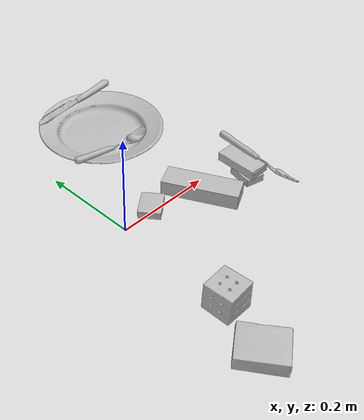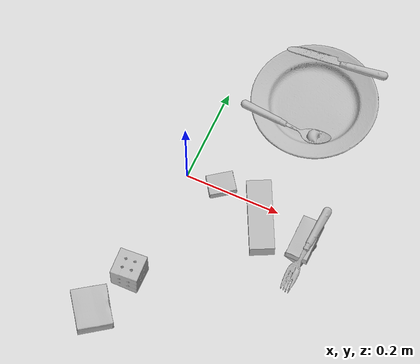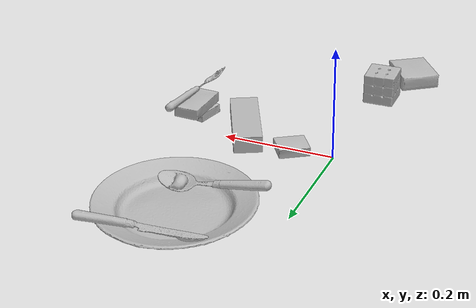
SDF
<sdf version="1.4">
  <world name="default">
    <light name="light1" type="point">
      <pose>0 0 1 0 0 0</pose>
      <diffuse>3 3 3 1</diffuse>
      <specular>3 3 3 1</specular>
    </light>
    <light name="light2" type="point">
      <pose>0 0.5 2 0 0 0</pose>
      <diffuse>1 1 1 1</diffuse>
      <specular>1 1 1 1</specular>
    </light>
    <light name="light3" type="point">
      <pose>0 0.5 2 0 0 0</pose>
      <diffuse>3 3 3 1</diffuse>
      <specular>3 3 3 1</specular>
    </light>
    <scene>
      <ambient>0.7 0.7 0.7</ambient>
    </scene>
    <model name="box11">
      <link name="link_box11">
        <collision name="default">
          <geometry>
            <mesh>
              <uri>model://pudding_box/collision_meshes/collision.obj</uri>
              <scale>0.5 0.5 0.5</scale>
            </mesh>
          </geometry>
          <surface>
            <friction>
              <ode>
                <mu>0.5</mu>
                <mu2>0.5</mu2>
              </ode>
            </friction>
          <contact>
        <ode>
            <max_vel>0</max_vel>
            <min_depth>0.0001</min_depth>
            <kp>1e8</kp>
        </ode>
    </contact></surface>
        </collision>
        <visual name="default">
          <geometry>
            <mesh>
              <uri>model://pudding_box/visual_meshes/visual.dae</uri>
              <scale>0.5 0.5 0.5</scale>
            </mesh>
          </geometry>
        </visual>
        <inertial>
          <mass>0.03786866366863251</mass>
          <pose>0.00024474109522998333 0.00040339428232982755 -0.0002594413817860186 0.005213102272185547 -0.006603797326323335 0.020079825161634604</pose>
          <inertia>
            <ixx>1.0702144e-05</ixx>
            <iyy>7.2004777e-06</iyy>
            <izz>1.580451e-05</izz>
            <ixy>0</ixy>
            <ixz>0</ixz>
            <iyz>0</iyz>
          </inertia>
        </inertial>
      </link>
      <pose>0.07222223281860352 0.006603177171200514 0.009862902574241161 0.022348445214074343 -0.011391777864585865 -0.9452913525447683</pose>
    </model>
    <model name="box12">
      <link name="link_box12">
        <collision name="default">
          <geometry>
            <mesh>
              <uri>model://gelatin_box/collision_meshes/collision.obj</uri>
              <scale>1.0 1.0 1.0</scale>
            </mesh>
          </geometry>
          <surface>
            <friction>
              <ode>
                <mu>0.5</mu>
                <mu2>0.5</mu2>
              </ode>
            </friction>
          <contact>
        <ode>
            <max_vel>0</max_vel>
            <min_depth>0.0001</min_depth>
            <kp>1e8</kp>
        </ode>
    </contact></surface>
        </collision>
        <visual name="default">
          <geometry>
            <mesh>
              <uri>model://gelatin_box/visual_meshes/visual.dae</uri>
              <scale>1.0 1.0 1.0</scale>
            </mesh>
          </geometry>
        </visual>
        <inertial>
          <mass>0.12588495016098022</mass>
          <pose>0.0004319618456065655 0.00011156871914863586 -0.0003640321083366871 -0.0010503723379331838 -0.004755819617810625 0.016440561335826234</pose>
          <inertia>
            <ixx>8.886451e-05</ixx>
            <iyy>6.3475454e-05</iyy>
            <izz>0.00013527159</izz>
            <ixy>0</ixy>
            <ixz>0</ixz>
            <iyz>0</iyz>
          </inertia>
        </inertial>
      </link>
      <pose>-0.04283470660448074 -0.3439554274082184 0.01516831573098898 0.005597460580465505 -0.00730454985413982 0.6067260963007894</pose>
    </model>
    <model name="box13">
      <link name="link_box13">
        <collision name="default">
          <geometry>
            <mesh>
              <uri>model://rubiks_cube/collision_meshes/collision.obj</uri>
              <scale>1.0 1.0 1.0</scale>
            </mesh>
          </geometry>
          <surface>
            <friction>
              <ode>
                <mu>0.5</mu>
                <mu2>0.5</mu2>
              </ode>
            </friction>
          <contact>
        <ode>
            <max_vel>0</max_vel>
            <min_depth>0.0001</min_depth>
            <kp>1e8</kp>
        </ode>
    </contact></surface>
        </collision>
        <visual name="default">
          <geometry>
            <mesh>
              <uri>model://rubiks_cube/visual_meshes/visual.dae</uri>
              <scale>1.0 1.0 1.0</scale>
            </mesh>
          </geometry>
        </visual>
        <inertial>
          <mass>0.24923686683177948</mass>
          <pose>2.6721039830590598e-05 5.256966323941015e-05 -7.264316082000732e-06 -0.05467307197132049 -0.09814178001312306 -0.03445579173896148</pose>
          <inertia>
            <ixx>0.00013772011</ixx>
            <iyy>0.00013707785</iyy>
            <izz>0.00013886133</izz>
            <ixy>0</ixy>
            <ixz>0</ixz>
            <iyz>0</iyz>
          </inertia>
        </inertial>
      </link>
      <pose>-0.009686611592769623 -0.24476908147335052 0.028678961098194122 -4.0495097305483135e-06 -1.7715932827832538e-06 0.04810170954355147</pose>
    </model>
    <model name="box21">
      <link name="link_box21">
        <collision name="default">
          <geometry>
            <mesh>
              <uri>model://cracker_box/collision_meshes/collision.obj</uri>
              <scale>0.25 0.25 0.25</scale>
            </mesh>
          </geometry>
          <surface>
            <friction>
              <ode>
                <mu>0.5</mu>
                <mu2>0.5</mu2>
              </ode>
            </friction>
          <contact>
        <ode>
            <max_vel>0</max_vel>
            <min_depth>0.0001</min_depth>
            <kp>1e8</kp>
        </ode>
    </contact></surface>
        </collision>
        <visual name="default">
          <geometry>
            <mesh>
              <uri>model://cracker_box/visual_meshes/visual.dae</uri>
              <scale>0.25 0.25 0.25</scale>
            </mesh>
          </geometry>
        </visual>
        <inertial>
          <mass>0.030397580936551094</mass>
          <pose>0.00023660376609768718 6.358562677633017e-05 -0.0004257384280208498 -0.0003162076301819785 -0.011106490531717715 0.002546795235004545</pose>
          <inertia>
            <ixx>4.8323677e-06</ixx>
            <iyy>7.979188e-06</iyy>
            <izz>1.1387034e-05</izz>
            <ixy>0</ixy>
            <ixz>0</ixz>
            <iyz>0</iyz>
          </inertia>
        </inertial>
      </link>
      <pose>0.2740788757801056 -0.058098092675209045 0.009139199741184711 1.146232113226043e-05 1.6364621685173587e-05 1.3484867314833033</pose>
    </model>
    <model name="box22">
      <link name="link_box22">
        <collision name="default">
          <geometry>
            <mesh>
              <uri>model://jenga/collision_meshes/collision.obj</uri>
              <scale>1.0 1.0 1.0</scale>
            </mesh>
          </geometry>
          <surface>
            <friction>
              <ode>
                <mu>0.5</mu>
                <mu2>0.5</mu2>
              </ode>
            </friction>
          <contact>
        <ode>
            <max_vel>0</max_vel>
            <min_depth>0.0001</min_depth>
            <kp>1e8</kp>
        </ode>
    </contact></surface>
        </collision>
        <visual name="default">
          <geometry>
            <mesh>
              <uri>model://jenga/visual_meshes/visual.dae</uri>
              <scale>1.0 1.0 1.0</scale>
            </mesh>
          </geometry>
        </visual>
        <inertial>
          <mass>0.22754427790641785</mass>
          <pose>-2.502855807051674e-07 -0.00010250010382151231 -4.0923401684267446e-05 0.0 -7.34215461761844e-07 0.0</pose>
          <inertia>
            <ixx>6.2967025e-05</ixx>
            <iyy>0.00042666285</iyy>
            <izz>0.00045549884</izz>
            <ixy>0</ixy>
            <ixz>0</ixz>
            <iyz>0</iyz>
          </inertia>
        </inertial>
      </link>
      <pose>0.1740400642156601 -0.028833216056227684 0.01499999687075615 3.741923328525322e-09 -2.4892465078198102e-09 -1.1015708861674682</pose>
    </model>
    <model name="box23">
      <link name="link_box23">
        <collision name="default">
          <geometry>
            <mesh>
              <uri>model://sugar_box/collision_meshes/collision.obj</uri>
              <scale>0.5 0.5 0.5</scale>
            </mesh>
          </geometry>
          <surface>
            <friction>
              <ode>
                <mu>0.5</mu>
                <mu2>0.5</mu2>
              </ode>
            </friction>
          <contact>
        <ode>
            <max_vel>0</max_vel>
            <min_depth>0.0001</min_depth>
            <kp>1e8</kp>
        </ode>
    </contact></surface>
        </collision>
        <visual name="default">
          <geometry>
            <mesh>
              <uri>model://sugar_box/visual_meshes/visual.dae</uri>
              <scale>0.5 0.5 0.5</scale>
            </mesh>
          </geometry>
        </visual>
        <inertial>
          <mass>0.07313712686300278</mass>
          <pose>0.0005171863595023751 1.924554817378521e-05 -0.00018182402709499002 -0.0004046264167799433 0.0010506636386831275 0.0026153785560066108</pose>
          <inertia>
            <ixx>1.5234412e-05</ixx>
            <iyy>4.924075e-05</iyy>
            <izz>5.894705e-05</izz>
            <ixy>0</ixy>
            <ixz>0</ixz>
            <iyz>0</iyz>
          </inertia>
        </inertial>
      </link>
      <pose>0.2764013707637787 -0.04274989664554596 0.02962413989007473 -0.018961948718040397 -0.029555129103515338 1.5631946828327046</pose>
    </model>
    <model name="plate1">
      <link name="link_plate1">
        <collision name="default">
          <geometry>
            <mesh>
              <uri>model://plate/collision_meshes/collision.obj</uri>
              <scale>1.0 1.0 1.0</scale>
            </mesh>
          </geometry>
          <surface>
            <friction>
              <ode>
                <mu>0.5</mu>
                <mu2>0.5</mu2>
              </ode>
            </friction>
          <contact>
        <ode>
            <max_vel>0</max_vel>
            <min_depth>0.0001</min_depth>
            <kp>1e8</kp>
        </ode>
    </contact></surface>
        </collision>
        <visual name="default">
          <geometry>
            <mesh>
              <uri>model://plate/visual_meshes/visual.dae</uri>
              <scale>1.0 1.0 1.0</scale>
            </mesh>
          </geometry>
        </visual>
        <inertial>
          <mass>0.2069685012102127</mass>
          <pose>-0.0006044612964615226 0.0002782598603516817 -0.0010561986127868295 0.0022188143427174073 -0.003225461822968263 0.4526007532235607</pose>
          <inertia>
            <ixx>0.0009682027</ixx>
            <iyy>0.0009589421</iyy>
            <izz>0.0018936595</izz>
            <ixy>0</ixy>
            <ixz>0</ixz>
            <iyz>0</iyz>
          </inertia>
        </inertial>
      </link>
      <pose>0.16864436864852905 0.25027087330818176 0.013733003288507462 -2.1756959506363064e-09 -8.362210084756655e-08 0.2206185898174154</pose>
    </model>
    <model name="silverware1">
      <link name="link_silverware1">
        <collision name="default">
          <geometry>
            <mesh>
              <uri>model://knife/collision_meshes/collision.obj</uri>
              <scale>1.0 1.0 1.0</scale>
            </mesh>
          </geometry>
          <surface>
            <friction>
              <ode>
                <mu>0.5</mu>
                <mu2>0.5</mu2>
              </ode>
            </friction>
          <contact>
        <ode>
            <max_vel>0</max_vel>
            <min_depth>0.0001</min_depth>
            <kp>1e8</kp>
        </ode>
    </contact></surface>
        </collision>
        <visual name="default">
          <geometry>
            <mesh>
              <uri>model://knife/visual_meshes/visual.dae</uri>
              <scale>1.0 1.0 1.0</scale>
            </mesh>
          </geometry>
        </visual>
        <inertial>
          <mass>0.01404397189617157</mass>
          <pose>-0.02378525771200657 0.0015275126788765192 5.0620223191799596e-05 0.07306830572090188 0.017248424252748085 -0.00740981553779352</pose>
          <inertia>
            <ixx>3.9862488e-07</ixx>
            <iyy>5.3954667e-05</iyy>
            <izz>5.408303e-05</izz>
            <ixy>0</ixy>
            <ixz>0</ixz>
            <iyz>0</iyz>
          </inertia>
        </inertial>
      </link>
      <pose>0.17748674750328064 0.34777528047561646 0.03281790018081665 -0.07860436659533188 0.004312700847278456 -3.0410608723111086</pose>
    </model>
    <model name="silverware2">
      <link name="link_silverware2">
        <collision name="default">
          <geometry>
            <mesh>
              <uri>model://fork/collision_meshes/collision.obj</uri>
              <scale>1.0 1.0 1.0</scale>
            </mesh>
          </geometry>
          <surface>
            <friction>
              <ode>
                <mu>0.5</mu>
                <mu2>0.5</mu2>
              </ode>
            </friction>
          <contact>
        <ode>
            <max_vel>0</max_vel>
            <min_depth>0.0001</min_depth>
            <kp>1e8</kp>
        </ode>
    </contact></surface>
        </collision>
        <visual name="default">
          <geometry>
            <mesh>
              <uri>model://fork/visual_meshes/visual.dae</uri>
              <scale>1.0 1.0 1.0</scale>
            </mesh>
          </geometry>
        </visual>
        <inertial>
          <mass>0.012992284260690212</mass>
          <pose>-0.029570037499070168 0.0004658822435885668 0.00032188609475269914 -0.013552170713958372 -0.010977837352032947 0.014453895109592321</pose>
          <inertia>
            <ixx>4.5545306e-07</ixx>
            <iyy>3.3919117e-05</iyy>
            <izz>3.4122822e-05</izz>
            <ixy>0</ixy>
            <ixz>0</ixz>
            <iyz>0</iyz>
          </inertia>
        </inertial>
      </link>
      <pose>0.28822845220565796 -0.06673724949359894 0.04512587934732437 -0.566095922523776 0.06143584920373668 -1.6483775703965695</pose>
    </model>
    <model name="silverware3">
      <link name="link_silverware3">
        <collision name="default">
          <geometry>
            <mesh>
              <uri>model://spoon/collision_meshes/collision.obj</uri>
              <scale>1.0 1.0 1.0</scale>
            </mesh>
          </geometry>
          <surface>
            <friction>
              <ode>
                <mu>0.5</mu>
                <mu2>0.5</mu2>
              </ode>
            </friction>
          <contact>
        <ode>
            <max_vel>0</max_vel>
            <min_depth>0.0001</min_depth>
            <kp>1e8</kp>
        </ode>
    </contact></surface>
        </collision>
        <visual name="default">
          <geometry>
            <mesh>
              <uri>model://spoon/visual_meshes/visual.dae</uri>
              <scale>1.0 1.0 1.0</scale>
            </mesh>
          </geometry>
        </visual>
        <inertial>
          <mass>0.01562128309160471</mass>
          <pose>-0.0055263228714466095 -0.0016034174477681518 -0.0007271653157658875 0.03521671072610287 -0.03906584128735088 0.006150609582760137</pose>
          <inertia>
            <ixx>8.688809e-07</ixx>
            <iyy>5.9438455e-05</iyy>
            <izz>5.986695e-05</izz>
            <ixy>0</ixy>
            <ixz>0</ixz>
            <iyz>0</iyz>
          </inertia>
        </inertial>
      </link>
      <pose>0.1353941261768341 0.18263891339302063 0.02178090438246727 -0.3467119544194382 0.185615551631637 0.009984726754549643</pose>
    </model>
  <physics type="ode">
      <max_contacts>50</max_contacts>
      <ode>
        <solver>
          <type>quick</type>
          <iters>75</iters>
        </solver>
        <constraints>
          <contact_max_correcting_vel>0</contact_max_correcting_vel>
          <contact_surface_layer>0</contact_surface_layer>
        </constraints>
      </ode>
    </physics></world>
</sdf>
